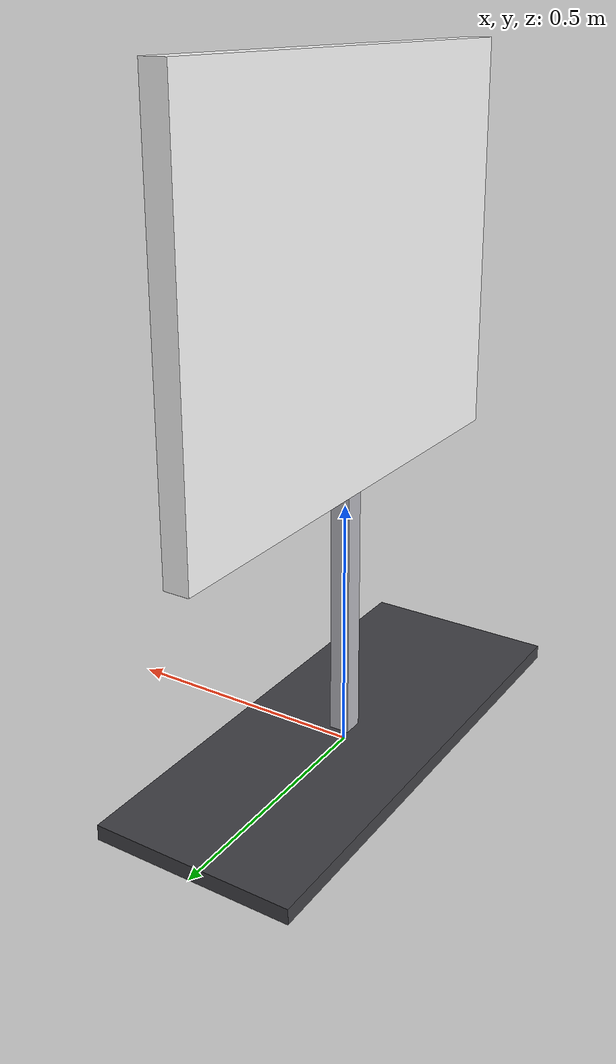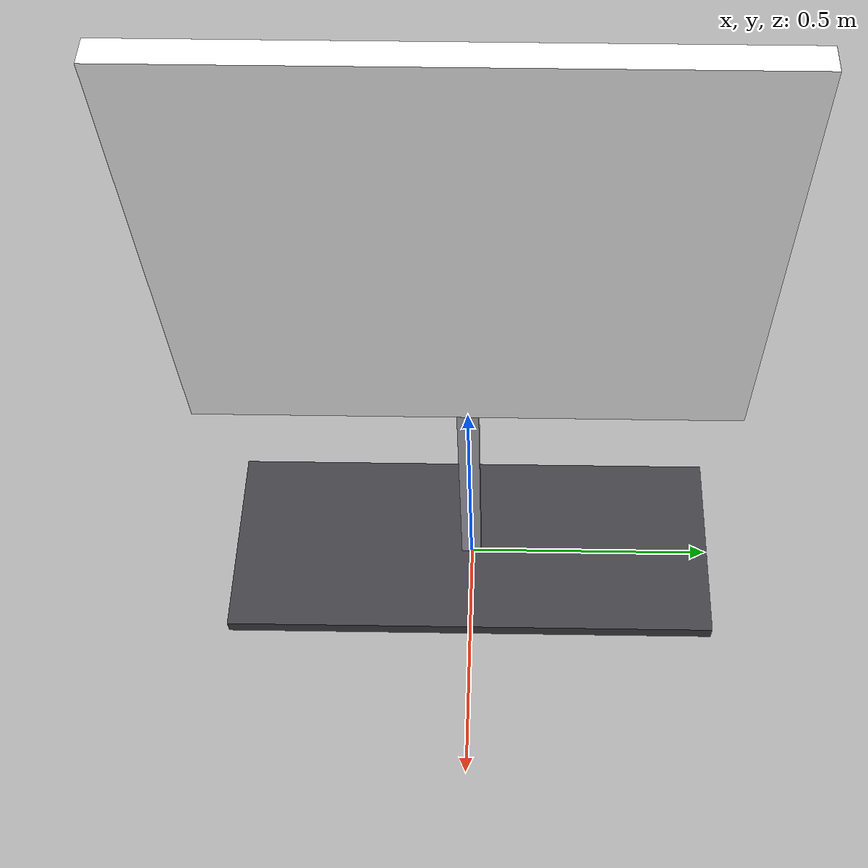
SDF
<?xml version="1.0" encoding="utf-8"?>
<sdf version="1.7">
  <model name="banner">
    <static>true</static>

    <!-- 1) 베이스 풋 (얇은 직사각 판, 안정성) -->
    <link name="foot">
      <pose>0 0 0.015 0 0 0</pose>
      <visual name="foot_visual">
        <geometry>
          <box><size>0.400 1.000 0.030</size></box>
        </geometry>
        <material>
          <ambient>0.18 0.18 0.20 1</ambient>
          <diffuse>0.26 0.26 0.28 1</diffuse>
          <specular>0.20 0.20 0.20 1</specular>
        </material>
      </visual>
      <collision name="foot_collision">
        <geometry>
          <box><size>0.400 1.000 0.030</size></box>
        </geometry>
      </collision>
    </link>

    <!-- 2) 중앙 마스트 (실버 알루미늄, 패널 받침) -->
    <link name="mast">
      <pose>0 0 0.280 0 0 0</pose>
      <visual name="mast_visual">
        <geometry>
          <box><size>0.040 0.040 0.500</size></box>
        </geometry>
        <material>
          <ambient>0.55 0.55 0.58 1</ambient>
          <diffuse>0.72 0.72 0.75 1</diffuse>
          <specular>0.55 0.55 0.55 1</specular>
        </material>
      </visual>
      <collision name="mast_collision">
        <geometry>
          <box><size>0.040 0.040 0.500</size></box>
        </geometry>
      </collision>
    </link>

    <!-- 3) 상단 패널 — 광고 텍스처. thin in X, 광고면 = +x. -->
    <link name="panel">
      <pose>0 0 0.925 0 0 0</pose>
      <visual name="panel_visual">
        <geometry>
          <box><size>0.050 1.000 0.790</size></box>
        </geometry>
        <material>
          <ambient>0.85 0.85 0.85 1</ambient>
          <diffuse>1.00 1.00 1.00 1</diffuse>
          <specular>0.10 0.10 0.10 1</specular>
          <pbr>
            <metal>
              <albedo_map>model://banner/materials/textures/mocanewdesign.png</albedo_map>
              <metalness>0.0</metalness>
              <roughness>0.80</roughness>
            </metal>
          </pbr>
        </material>
      </visual>
    </link>
  </model>
</sdf>
